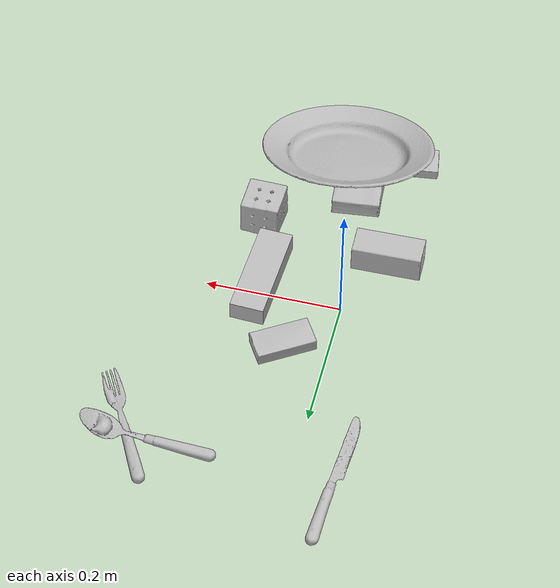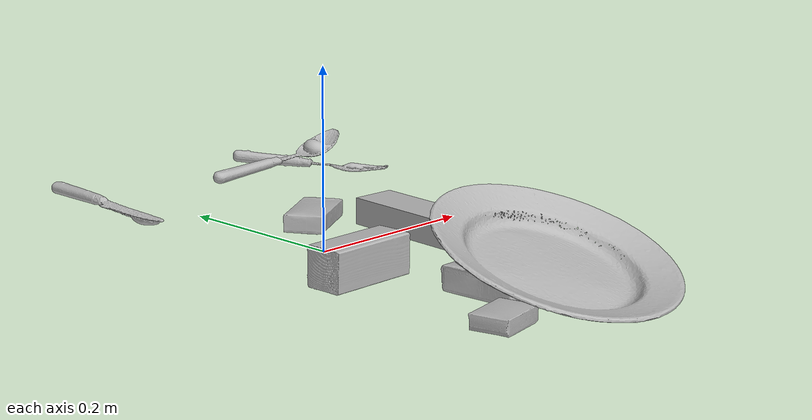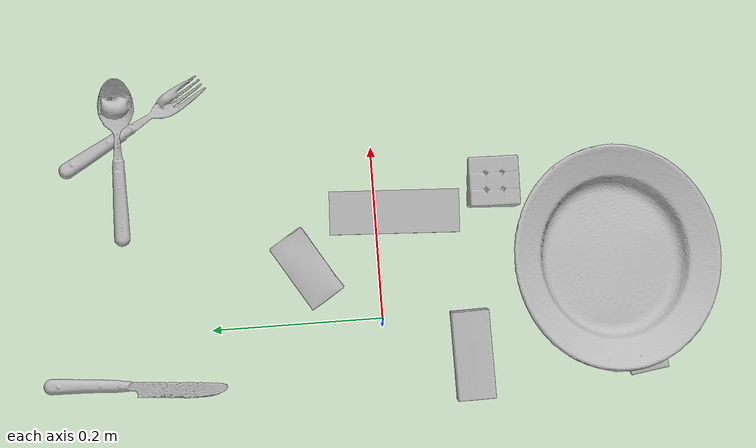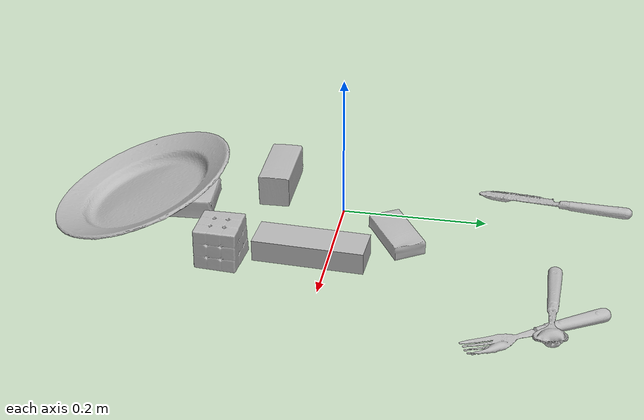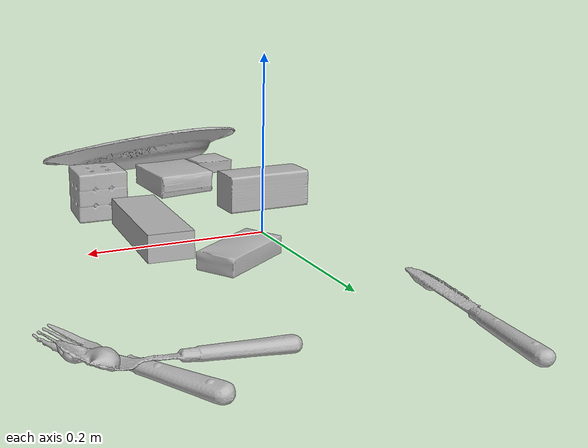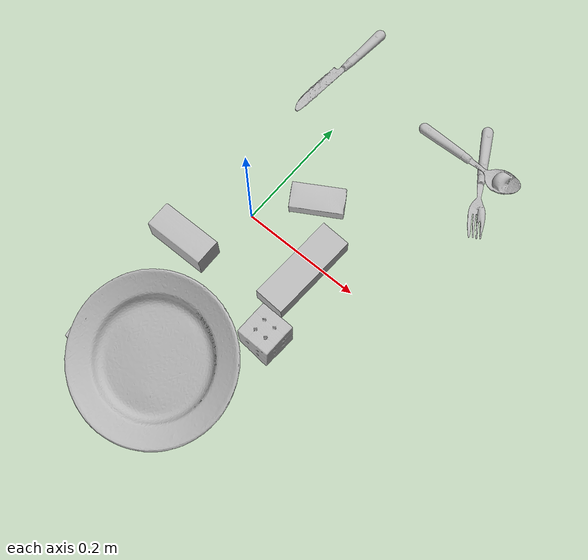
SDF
<sdf version="1.4">
  <world name="default">
    <light name="light1" type="point">
      <pose>0 0 1 0 0 0</pose>
      <diffuse>3 3 3 1</diffuse>
      <specular>3 3 3 1</specular>
    </light>
    <light name="light2" type="point">
      <pose>0 0.5 2 0 0 0</pose>
      <diffuse>1 1 1 1</diffuse>
      <specular>1 1 1 1</specular>
    </light>
    <light name="light3" type="point">
      <pose>0 0.5 2 0 0 0</pose>
      <diffuse>3 3 3 1</diffuse>
      <specular>3 3 3 1</specular>
    </light>
    <scene>
      <ambient>0.7 0.7 0.7</ambient>
    </scene>
    <model name="box11">
      <link name="link_box11">
        <collision name="default">
          <geometry>
            <mesh>
              <uri>model://jenga/collision_meshes/collision.obj</uri>
              <scale>1.0 1.0 1.0</scale>
            </mesh>
          </geometry>
          <surface>
            <friction>
              <ode>
                <mu>0.5</mu>
                <mu2>0.5</mu2>
              </ode>
            </friction>
          <contact>
        <ode>
            <max_vel>0</max_vel>
            <min_depth>0.0001</min_depth>
            <kp>1e8</kp>
        </ode>
    </contact></surface>
        </collision>
        <visual name="default">
          <geometry>
            <mesh>
              <uri>model://jenga/visual_meshes/visual.dae</uri>
              <scale>1.0 1.0 1.0</scale>
            </mesh>
          </geometry>
        </visual>
        <inertial>
          <mass>0.24099597334861755</mass>
          <pose>-2.502855807051674e-07 -0.00010250010382151231 -4.0923401684267446e-05 0.0 -7.34215461761844e-07 0.0</pose>
          <inertia>
            <ixx>6.668944e-05</ixx>
            <iyy>0.0004518858</iyy>
            <izz>0.00048242652</izz>
            <ixy>0</ixy>
            <ixz>0</ixz>
            <iyz>0</iyz>
          </inertia>
        </inertial>
      </link>
      <pose>0.12315519154071808 -0.02244609408080578 0.014999997802078724 1.9296201364785036e-08 4.478817475025455e-09 -1.6173551776773725</pose>
    </model>
    <model name="box12">
      <link name="link_box12">
        <collision name="default">
          <geometry>
            <mesh>
              <uri>model://wood_block/collision_meshes/collision.obj</uri>
              <scale>0.5 0.5 0.5</scale>
            </mesh>
          </geometry>
          <surface>
            <friction>
              <ode>
                <mu>0.5</mu>
                <mu2>0.5</mu2>
              </ode>
            </friction>
          <contact>
        <ode>
            <max_vel>0</max_vel>
            <min_depth>0.0001</min_depth>
            <kp>1e8</kp>
        </ode>
    </contact></surface>
        </collision>
        <visual name="default">
          <geometry>
            <mesh>
              <uri>model://wood_block/visual_meshes/visual.dae</uri>
              <scale>0.5 0.5 0.5</scale>
            </mesh>
          </geometry>
        </visual>
        <inertial>
          <mass>0.14152581989765167</mass>
          <pose>-2.9066577553749084e-06 -0.000285404734313488 0.00013204291462898254 -0.05220812938960465 -0.005192695343712196 -0.006861377662393293</pose>
          <inertia>
            <ixx>4.7345737e-05</ixx>
            <iyy>0.0001495652</iyy>
            <izz>0.00014900575</izz>
            <ixy>0</ixy>
            <ixz>0</ixz>
            <iyz>0</iyz>
          </inertia>
        </inertial>
      </link>
      <pose>-0.048037052154541016 -0.10131893306970596 0.02262926660478115 -0.005208531573278254 0.0057188096939075036 -3.12475360733709</pose>
    </model>
    <model name="box13">
      <link name="link_box13">
        <collision name="default">
          <geometry>
            <mesh>
              <uri>model://sugar_box/collision_meshes/collision.obj</uri>
              <scale>0.5 0.5 0.5</scale>
            </mesh>
          </geometry>
          <surface>
            <friction>
              <ode>
                <mu>0.5</mu>
                <mu2>0.5</mu2>
              </ode>
            </friction>
          <contact>
        <ode>
            <max_vel>0</max_vel>
            <min_depth>0.0001</min_depth>
            <kp>1e8</kp>
        </ode>
    </contact></surface>
        </collision>
        <visual name="default">
          <geometry>
            <mesh>
              <uri>model://sugar_box/visual_meshes/visual.dae</uri>
              <scale>0.5 0.5 0.5</scale>
            </mesh>
          </geometry>
        </visual>
        <inertial>
          <mass>0.08336380124092102</mass>
          <pose>0.0005171863595023751 1.924554817378521e-05 -0.00018182402709499002 -0.0004046263001201691 0.0010506636386254094 0.0026153790217303746</pose>
          <inertia>
            <ixx>1.7364619e-05</ixx>
            <iyy>5.612603e-05</iyy>
            <izz>6.718955e-05</izz>
            <ixy>0</ixy>
            <ixz>0</ixz>
            <iyz>0</iyz>
          </inertia>
        </inertial>
      </link>
      <pose>0.06504063308238983 0.08377604931592941 0.01139930821955204 0.0007752522461292835 -0.02343275656258583 -2.5909926490801296</pose>
    </model>
    <model name="box21">
      <link name="link_box21">
        <collision name="default">
          <geometry>
            <mesh>
              <uri>model://pudding_box/collision_meshes/collision.obj</uri>
              <scale>0.5 0.5 0.5</scale>
            </mesh>
          </geometry>
          <surface>
            <friction>
              <ode>
                <mu>0.5</mu>
                <mu2>0.5</mu2>
              </ode>
            </friction>
          <contact>
        <ode>
            <max_vel>0</max_vel>
            <min_depth>0.0001</min_depth>
            <kp>1e8</kp>
        </ode>
    </contact></surface>
        </collision>
        <visual name="default">
          <geometry>
            <mesh>
              <uri>model://pudding_box/visual_meshes/visual.dae</uri>
              <scale>0.5 0.5 0.5</scale>
            </mesh>
          </geometry>
        </visual>
        <inertial>
          <mass>0.025778822600841522</mass>
          <pose>0.00024474109522998333 0.00040339428232982755 -0.0002594413817860186 0.005213100851918505 -0.006603799640504885 0.02007982516037135</pose>
          <inertia>
            <ixx>7.285408e-06</ixx>
            <iyy>4.901674e-06</iyy>
            <izz>1.07588085e-05</izz>
            <ixy>0</ixy>
            <ixz>0</ixz>
            <iyz>0</iyz>
          </inertia>
        </inertial>
      </link>
      <pose>-0.0556161142885685 -0.30164799094200134 0.009862902574241161 0.022348698241060734 -0.011391592347368334 -1.4121291163896696</pose>
    </model>
    <model name="box22">
      <link name="link_box22">
        <collision name="default">
          <geometry>
            <mesh>
              <uri>model://rubiks_cube/collision_meshes/collision.obj</uri>
              <scale>1.0 1.0 1.0</scale>
            </mesh>
          </geometry>
          <surface>
            <friction>
              <ode>
                <mu>0.5</mu>
                <mu2>0.5</mu2>
              </ode>
            </friction>
          <contact>
        <ode>
            <max_vel>0</max_vel>
            <min_depth>0.0001</min_depth>
            <kp>1e8</kp>
        </ode>
    </contact></surface>
        </collision>
        <visual name="default">
          <geometry>
            <mesh>
              <uri>model://rubiks_cube/visual_meshes/visual.dae</uri>
              <scale>1.0 1.0 1.0</scale>
            </mesh>
          </geometry>
        </visual>
        <inertial>
          <mass>0.22147096693515778</mass>
          <pose>2.6721041649580002e-05 5.256967051536776e-05 -7.264316082000732e-06 -0.05467273282600652 -0.09814100107642566 -0.034457018786431724</pose>
          <inertia>
            <ixx>0.00012237758</ixx>
            <iyy>0.00012180688</iyy>
            <izz>0.00012339167</izz>
            <ixy>0</ixy>
            <ixz>0</ixz>
            <iyz>0</iyz>
          </inertia>
        </inertial>
      </link>
      <pose>0.1493651419878006 -0.13852503895759583 0.02867894433438778 -4.201849643054538e-06 -1.879928256164015e-06 -0.028748139353485965</pose>
    </model>
    <model name="box23">
      <link name="link_box23">
        <collision name="default">
          <geometry>
            <mesh>
              <uri>model://gelatin_box/collision_meshes/collision.obj</uri>
              <scale>1.0 1.0 1.0</scale>
            </mesh>
          </geometry>
          <surface>
            <friction>
              <ode>
                <mu>0.5</mu>
                <mu2>0.5</mu2>
              </ode>
            </friction>
          <contact>
        <ode>
            <max_vel>0</max_vel>
            <min_depth>0.0001</min_depth>
            <kp>1e8</kp>
        </ode>
    </contact></surface>
        </collision>
        <visual name="default">
          <geometry>
            <mesh>
              <uri>model://gelatin_box/visual_meshes/visual.dae</uri>
              <scale>1.0 1.0 1.0</scale>
            </mesh>
          </geometry>
        </visual>
        <inertial>
          <mass>0.20053431391716003</mass>
          <pose>0.0004319618456065655 0.00011156871914863586 -0.00036403207923285663 -0.001050372330881514 -0.004755818219920532 0.016440563197859918</pose>
          <inertia>
            <ixx>0.00014156084</ixx>
            <iyy>0.00010111618</iyy>
            <izz>0.00021548718</izz>
            <ixy>0</ixy>
            <ixz>0</ixz>
            <iyz>0</iyz>
          </inertia>
        </inertial>
      </link>
      <pose>0.023433761671185493 -0.22410506010055542 0.01516876183450222 0.005616409503405513 -0.0073051460664336 -3.067543340328789</pose>
    </model>
    <model name="plate1">
      <link name="link_plate1">
        <collision name="default">
          <geometry>
            <mesh>
              <uri>model://plate/collision_meshes/collision.obj</uri>
              <scale>1.0 1.0 1.0</scale>
            </mesh>
          </geometry>
          <surface>
            <friction>
              <ode>
                <mu>0.5</mu>
                <mu2>0.5</mu2>
              </ode>
            </friction>
          <contact>
        <ode>
            <max_vel>0</max_vel>
            <min_depth>0.0001</min_depth>
            <kp>1e8</kp>
        </ode>
    </contact></surface>
        </collision>
        <visual name="default">
          <geometry>
            <mesh>
              <uri>model://plate/visual_meshes/visual.dae</uri>
              <scale>1.0 1.0 1.0</scale>
            </mesh>
          </geometry>
        </visual>
        <inertial>
          <mass>0.1705944687128067</mass>
          <pose>-0.0006044638575986028 0.0002782570372801274 -0.0010561983799561858 0.002218806973518856 -0.003225464946202784 0.4526031622217862</pose>
          <inertia>
            <ixx>0.0007980444</ixx>
            <iyy>0.0007904114</iyy>
            <izz>0.0015608557</izz>
            <ixy>0</ixy>
            <ixz>0</ixz>
            <iyz>0</iyz>
          </inertia>
        </inertial>
      </link>
      <pose>0.05159212648868561 -0.27248913049697876 0.03841050714254379 0.1755541896786483 0.2767399402768975 -0.8177152593537633</pose>
    </model>
    <model name="silverware1">
      <link name="link_silverware1">
        <collision name="default">
          <geometry>
            <mesh>
              <uri>model://fork/collision_meshes/collision.obj</uri>
              <scale>1.0 1.0 1.0</scale>
            </mesh>
          </geometry>
          <surface>
            <friction>
              <ode>
                <mu>0.5</mu>
                <mu2>0.5</mu2>
              </ode>
            </friction>
          <contact>
        <ode>
            <max_vel>0</max_vel>
            <min_depth>0.0001</min_depth>
            <kp>1e8</kp>
        </ode>
    </contact></surface>
        </collision>
        <visual name="default">
          <geometry>
            <mesh>
              <uri>model://fork/visual_meshes/visual.dae</uri>
              <scale>1.0 1.0 1.0</scale>
            </mesh>
          </geometry>
        </visual>
        <inertial>
          <mass>0.02693658135831356</mass>
          <pose>-0.02957003191113472 0.00046588244731538 0.0003218860365450382 -0.013551533598057301 -0.010977833518912038 0.014453896181446386</pose>
          <inertia>
            <ixx>9.442797e-07</ixx>
            <iyy>7.032368e-05</iyy>
            <izz>7.074603e-05</izz>
            <ixy>0</ixy>
            <ixz>0</ixz>
            <iyz>0</iyz>
          </inertia>
        </inertial>
      </link>
      <pose>0.24188683927059174 0.2766594886779785 0.005367106758058071 -0.06352512537134976 0.04337417855354643 -1.0626857507226288</pose>
    </model>
    <model name="silverware2">
      <link name="link_silverware2">
        <collision name="default">
          <geometry>
            <mesh>
              <uri>model://knife/collision_meshes/collision.obj</uri>
              <scale>1.0 1.0 1.0</scale>
            </mesh>
          </geometry>
          <surface>
            <friction>
              <ode>
                <mu>0.5</mu>
                <mu2>0.5</mu2>
              </ode>
            </friction>
          <contact>
        <ode>
            <max_vel>0</max_vel>
            <min_depth>0.0001</min_depth>
            <kp>1e8</kp>
        </ode>
    </contact></surface>
        </collision>
        <visual name="default">
          <geometry>
            <mesh>
              <uri>model://knife/visual_meshes/visual.dae</uri>
              <scale>1.0 1.0 1.0</scale>
            </mesh>
          </geometry>
        </visual>
        <inertial>
          <mass>0.029087698087096214</mass>
          <pose>-0.023785242810845375 0.0015275123296305537 5.0620237743714824e-05 0.07305335090844457 0.017248415402536993 -0.007409830271159857</pose>
          <inertia>
            <ixx>8.256269e-07</ixx>
            <iyy>0.00011175022</iyy>
            <izz>0.00011201614</izz>
            <ixy>0</ixy>
            <ixz>0</ixz>
            <iyz>0</iyz>
          </inertia>
        </inertial>
      </link>
      <pose>-0.06055288016796112 0.2930474579334259 0.007946522906422615 -0.023917065915209295 -0.01454252950104195 -1.6540292241100034</pose>
    </model>
    <model name="silverware3">
      <link name="link_silverware3">
        <collision name="default">
          <geometry>
            <mesh>
              <uri>model://spoon/collision_meshes/collision.obj</uri>
              <scale>1.0 1.0 1.0</scale>
            </mesh>
          </geometry>
          <surface>
            <friction>
              <ode>
                <mu>0.5</mu>
                <mu2>0.5</mu2>
              </ode>
            </friction>
          <contact>
        <ode>
            <max_vel>0</max_vel>
            <min_depth>0.0001</min_depth>
            <kp>1e8</kp>
        </ode>
    </contact></surface>
        </collision>
        <visual name="default">
          <geometry>
            <mesh>
              <uri>model://spoon/visual_meshes/visual.dae</uri>
              <scale>1.0 1.0 1.0</scale>
            </mesh>
          </geometry>
        </visual>
        <inertial>
          <mass>0.04163059964776039</mass>
          <pose>-0.005526324268430471 -0.001603418029844761 -0.0007271656068041921 0.035215733596471024 -0.03906582179646946 0.006150610371924991</pose>
          <inertia>
            <ixx>2.3155617e-06</ixx>
            <iyy>0.00015840305</iyy>
            <izz>0.00015954502</izz>
            <ixy>0</ixy>
            <ixz>0</ixz>
            <iyz>0</iyz>
          </inertia>
        </inertial>
      </link>
      <pose>0.20473319292068481 0.29512104392051697 0.015149496495723724 0.07044495938767233 -0.060328824198896826 -0.031440837714445044</pose>
    </model>
  <physics type="ode">
      <max_contacts>50</max_contacts>
      <ode>
        <solver>
          <type>quick</type>
          <iters>75</iters>
        </solver>
        <constraints>
          <contact_max_correcting_vel>0</contact_max_correcting_vel>
          <contact_surface_layer>0</contact_surface_layer>
        </constraints>
      </ode>
    </physics></world>
</sdf>
